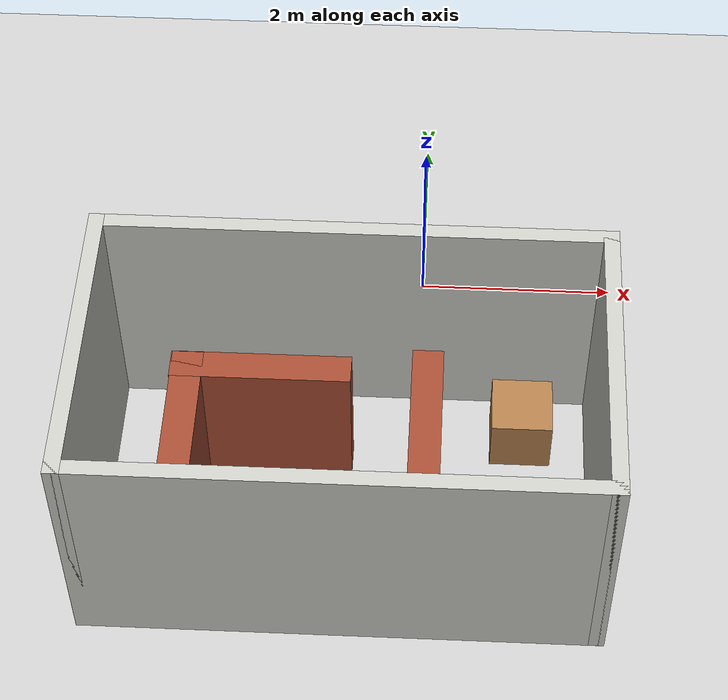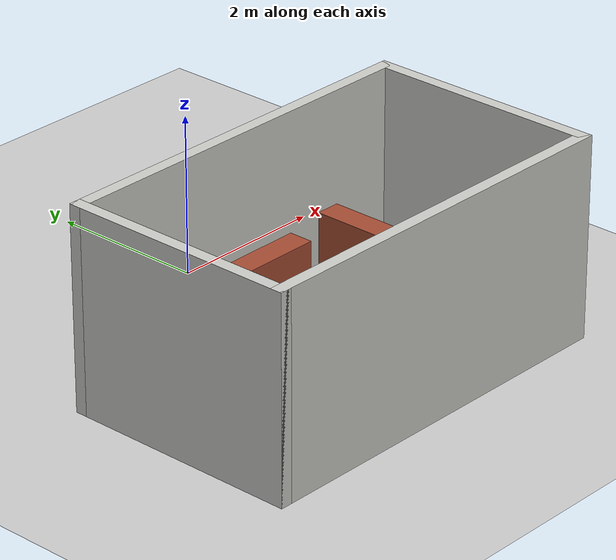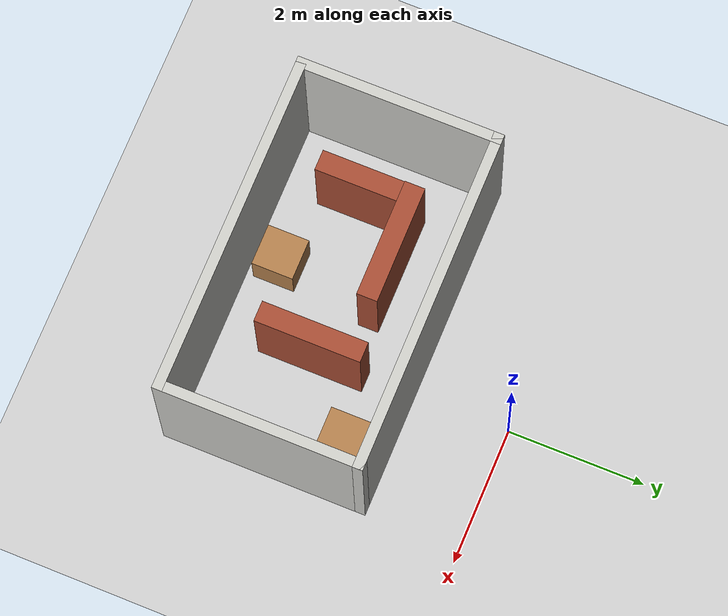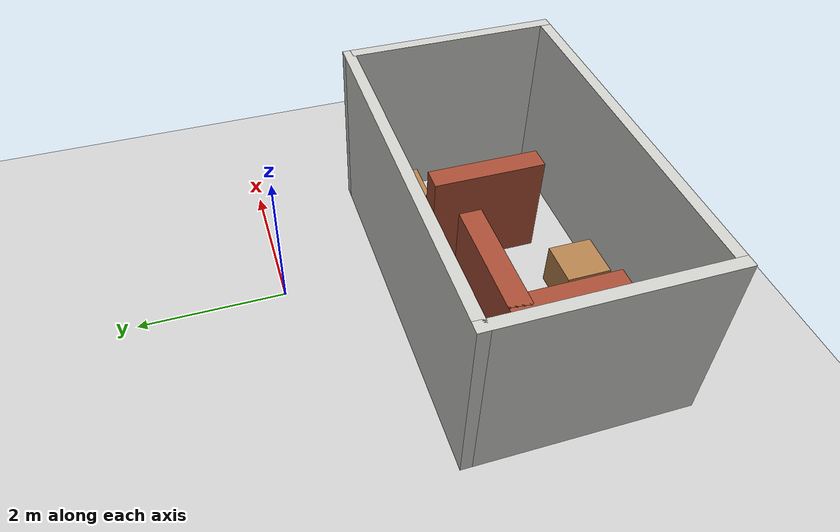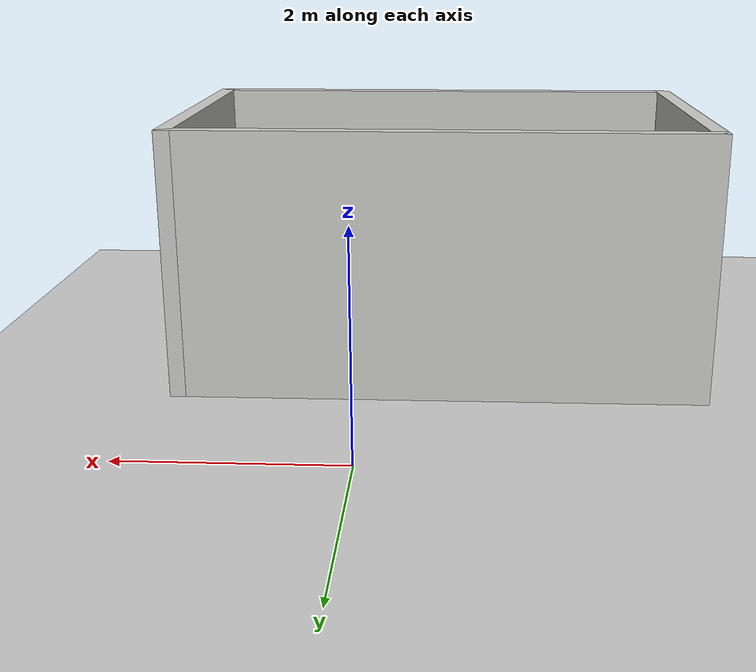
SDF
<sdf version="1.6">
 <world name="default">
  <light name="sun" type="directional">
   <pose>0 0 10 0 -0 0</pose>
   <diffuse>0.8 0.8 0.8 1</diffuse>
   <specular>0.2 0.2 0.2 1</specular>
   <attenuation>
    <range>1000</range>
    <constant>0.9</constant>
    <linear>0.01</linear>
    <quadratic>0.001</quadratic>
   </attenuation>
   <direction>-0.5 0.1 -0.9</direction>
  </light>
  <model name="ground_plane">
   <static>1</static>
   <link name="link">
    <collision name="collision">
     <geometry><plane><normal>0 0 1</normal><size>100 100</size></plane></geometry>
     <surface><friction><ode><mu>100</mu><mu2>50</mu2></ode></friction></surface>
    </collision>
    <visual name="visual">
     <cast_shadows>0</cast_shadows>
     <geometry><plane><normal>0 0 1</normal><size>100 100</size></plane></geometry>
     <material>
      <script><uri>file://media/materials/scripts/gazebo.material</uri><name>Gazebo/Grey</name></script>
     </material>
    </visual>
   </link>
  </model>
  <gravity>0 0 -9.8</gravity>
  <magnetic_field>6e-06 2.3e-05 -4.2e-05</magnetic_field>
  <atmosphere type="adiabatic"/>
  <physics name="default_physics" default="0" type="ode">
   <max_step_size>0.001</max_step_size>
   <real_time_factor>1</real_time_factor>
   <real_time_update_rate>1000</real_time_update_rate>
  </physics>
  <scene><ambient>0.4 0.4 0.4 1</ambient><background>0.7 0.7 0.7 1</background><shadows>1</shadows></scene>
  <spherical_coordinates>
   <surface_model>EARTH_WGS84</surface_model>
   <latitude_deg>0</latitude_deg>
   <longitude_deg>0</longitude_deg>
   <elevation>0</elevation>
   <heading_deg>0</heading_deg>
  </spherical_coordinates>
  <model name="Untitled">
   <pose>-0.655 -2.875 0 0 -0 0</pose>
   <link name="Wall_0">
    <collision name="Wall_0_Collision">
     <geometry><box><size>3 0.15 2.5</size></box></geometry>
     <pose>0 0 1.25 0 -0 0</pose>
    </collision>
    <visual name="Wall_0_Visual">
     <pose>0 0 1.25 0 -0 0</pose>
     <geometry><box><size>3 0.15 2.5</size></box></geometry>
     <material>
      <script><uri>file://media/materials/scripts/gazebo.material</uri><name>Gazebo/CeilingTiled</name></script>
      <ambient>0.760784 0.662745 0.627451 1</ambient>
     </material>
     <meta><layer>0</layer></meta>
    </visual>
    <pose>-2.425 -0 0 0 -0 -1.5708</pose>
   </link>
   <link name="Wall_1">
    <collision name="Wall_1_Collision">
     <geometry><box><size>5 0.15 2.5</size></box></geometry>
     <pose>0 0 1.25 0 -0 0</pose>
    </collision>
    <visual name="Wall_1_Visual">
     <pose>0 0 1.25 0 -0 0</pose>
     <geometry><box><size>5 0.15 2.5</size></box></geometry>
     <material>
      <script><uri>file://media/materials/scripts/gazebo.material</uri><name>Gazebo/CeilingTiled</name></script>
      <ambient>0.760784 0.662745 0.627451 1</ambient>
     </material>
     <meta><layer>0</layer></meta>
    </visual>
    <pose>0 -1.425 0 0 -0 0</pose>
   </link>
   <link name="Wall_10">
    <collision name="Wall_10_Collision">
     <geometry><box><size>1.72926 0.3 1.5</size></box></geometry>
     <pose>0 0 0.75 0 -0 0</pose>
    </collision>
    <visual name="Wall_10_Visual">
     <pose>0 0 0.75 0 -0 0</pose>
     <geometry><box><size>1.72926 0.3 1.5</size></box></geometry>
     <material>
      <script><uri>file://media/materials/scripts/gazebo.material</uri><name>Gazebo/Bricks</name></script>
      <ambient>1 1 1 1</ambient>
     </material>
     <meta><layer>0</layer></meta>
    </visual>
    <pose>-0.84263 0.525 0 0 -0 0</pose>
   </link>
   <link name="Wall_13">
    <collision name="Wall_13_Collision">
     <geometry><box><size>1.55 0.3 1.5</size></box></geometry>
     <pose>0.05 0 0.75 0 -0 0</pose>
    </collision>
    <visual name="Wall_13_Visual">
     <pose>0.05 0 0.75 0 -0 0</pose>
     <geometry><box><size>1.55 0.3 1.5</size></box></geometry>
     <material>
      <script><uri>file://media/materials/scripts/gazebo.material</uri><name>Gazebo/Bricks</name></script>
      <ambient>1 1 1 1</ambient>
     </material>
     <meta><layer>0</layer></meta>
    </visual>
    <pose>0.747609 -0.037957 0 0 -0 1.5708</pose>
   </link>
   <link name="Wall_15">
    <collision name="Wall_15_Collision">
     <geometry><box><size>0.61 0.6 0.6</size></box></geometry>
     <pose>0 0 0.3 0 -0 0</pose>
    </collision>
    <visual name="Wall_15_Visual">
     <pose>0 0 0.3 0 -0 0</pose>
     <geometry><box><size>0.61 0.6 0.6</size></box></geometry>
     <material>
      <script><uri>file://media/materials/scripts/gazebo.material</uri><name>Gazebo/Wood</name></script>
      <ambient>1 1 1 1</ambient>
     </material>
     <meta><layer>0</layer></meta>
    </visual>
    <pose>-0.382696 -0.944783 0 0 -0 1.5708</pose>
   </link>
   <link name="Wall_17">
    <collision name="Wall_17_Collision">
     <geometry><box><size>0.61 0.6 0.6</size></box></geometry>
     <pose>0 0 0.3 0 -0 0</pose>
    </collision>
    <visual name="Wall_17_Visual">
     <pose>0 0 0.3 0 -0 0</pose>
     <geometry><box><size>0.61 0.6 0.6</size></box></geometry>
     <material>
      <script><uri>file://media/materials/scripts/gazebo.material</uri><name>Gazebo/Wood</name></script>
      <ambient>1 1 1 1</ambient>
     </material>
     <meta><layer>0</layer></meta>
    </visual>
    <pose>1.69587 0.862287 0 0 -0 -1.5708</pose>
   </link>
   <link name="Wall_2">
    <collision name="Wall_2_Collision">
     <geometry><box><size>3 0.15 2.5</size></box></geometry>
     <pose>0 0 1.25 0 -0 0</pose>
    </collision>
    <visual name="Wall_2_Visual">
     <pose>0 0 1.25 0 -0 0</pose>
     <geometry><box><size>3 0.15 2.5</size></box></geometry>
     <material>
      <script><uri>file://media/materials/scripts/gazebo.material</uri><name>Gazebo/CeilingTiled</name></script>
      <ambient>0.760784 0.662745 0.627451 1</ambient>
     </material>
     <meta><layer>0</layer></meta>
    </visual>
    <pose>2.425 -0 0 0 -0 1.5708</pose>
   </link>
   <link name="Wall_3">
    <collision name="Wall_3_Collision">
     <geometry><box><size>5 0.15 2.5</size></box></geometry>
     <pose>0 0 1.25 0 -0 0</pose>
    </collision>
    <visual name="Wall_3_Visual">
     <pose>0 0 1.25 0 -0 0</pose>
     <geometry><box><size>5 0.15 2.5</size></box></geometry>
     <material>
      <script><uri>file://media/materials/scripts/gazebo.material</uri><name>Gazebo/CeilingTiled</name></script>
      <ambient>0.760784 0.662745 0.627451 1</ambient>
     </material>
     <meta><layer>0</layer></meta>
    </visual>
    <pose>0 1.425 0 0 -0 3.14159</pose>
   </link>
   <link name="Wall_9">
    <collision name="Wall_9_Collision">
     <geometry><box><size>1.5 0.3 1.5</size></box></geometry>
     <pose>0.08 0 0.75 0 -0 0</pose>
    </collision>
    <visual name="Wall_9_Visual">
     <pose>0.08 0 0.75 0 -0 0</pose>
     <geometry><box><size>1.5 0.3 1.5</size></box></geometry>
     <material>
      <script><uri>file://media/materials/scripts/gazebo.material</uri><name>Gazebo/Bricks</name></script>
      <ambient>1 1 1 1</ambient>
     </material>
     <meta><layer>0</layer></meta>
    </visual>
    <pose>-1.54856 -0.158696 0 0 -0 1.5708</pose>
   </link>
   <static>1</static>
  </model>
 </world>
</sdf>
